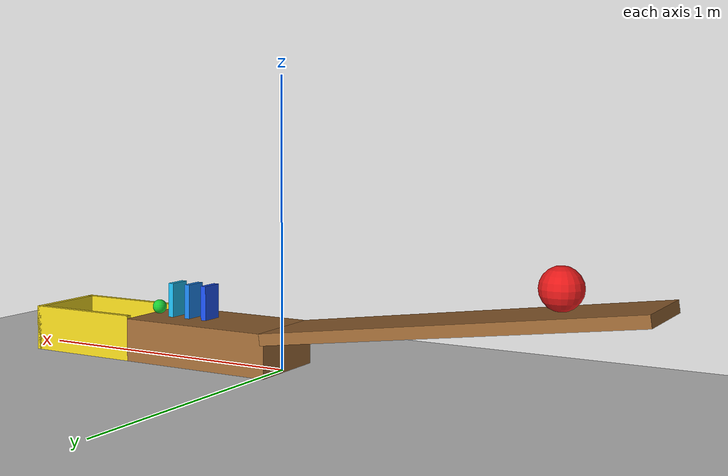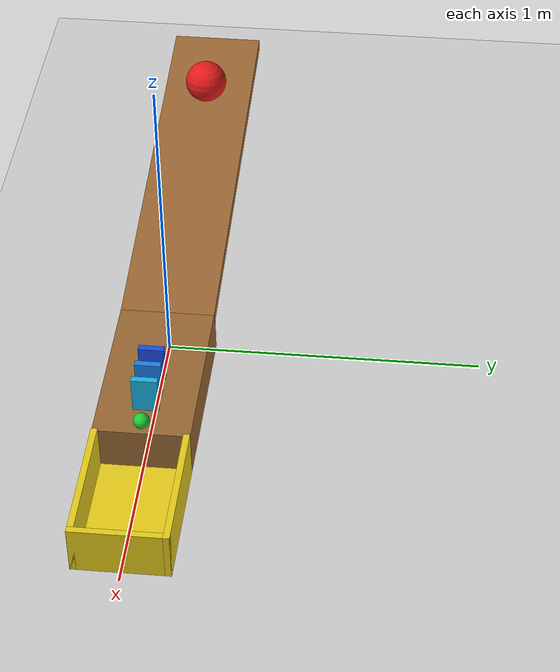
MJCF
<mujoco model="ramp_domino_cup">
  <option timestep="0.002"/>
  <worldbody>
    <light name="sun" pos="0 0 3" dir="0 0 -1" directional="true"/>
    <geom name="floor" type="plane" size="3 3 0.1" rgba="0.8 0.8 0.8 1"/>

    <body name="ramp" pos="0 0 0">
      <geom name="ramp_incline" type="box" size="0.65 0.15 0.02" pos="-0.646457 0 0.220657" euler="0 8 0" rgba="0.6 0.4 0.2 1"/>
      <geom name="ramp_platform" type="box" size="0.285 0.15 0.075" pos="0.265 0 0.075" rgba="0.6 0.4 0.2 1"/>
    </body>

    <body name="ball1" pos="-0.980526 0 0.358492">
      <freejoint name="ball1_free"/>
      <geom name="ball1_geom" type="sphere" size="0.07" mass="0.15" condim="6" friction="1 0.005 0.0005" rgba="0.9 0.1 0.1 1"/>
    </body>

    <body name="d1" pos="0.30 0 0.21">
      <freejoint name="d1_free"/>
      <geom name="d1_geom" type="box" size="0.01 0.04 0.06" rgba="0.1 0.3 0.9 1"/>
    </body>

    <body name="d2" pos="0.37 0 0.21">
      <freejoint name="d2_free"/>
      <geom name="d2_geom" type="box" size="0.01 0.04 0.06" rgba="0.1 0.5 0.9 1"/>
    </body>

    <body name="d3" pos="0.44 0 0.21">
      <freejoint name="d3_free"/>
      <geom name="d3_geom" type="box" size="0.01 0.04 0.06" rgba="0.1 0.7 0.9 1"/>
    </body>

    <body name="ball2" pos="0.52 0 0.175">
      <freejoint name="ball2_free"/>
      <geom name="ball2_geom" type="sphere" size="0.025" condim="6" friction="1 0.005 0.002" rgba="0.1 0.8 0.2 1"/>
    </body>

    <body name="cup" pos="0 0 0">
      <geom name="cup_base" type="box" size="0.2 0.13 0.005" pos="0.75 0 0.005" rgba="0.9 0.8 0.1 1"/>
      <geom name="cup_far_wall" type="box" size="0.01 0.15 0.08" pos="0.96 0 0.08" rgba="0.9 0.8 0.1 1"/>
      <geom name="cup_side_left" type="box" size="0.21 0.01 0.08" pos="0.76 0.14 0.08" rgba="0.9 0.8 0.1 1"/>
      <geom name="cup_side_right" type="box" size="0.21 0.01 0.08" pos="0.76 -0.14 0.08" rgba="0.9 0.8 0.1 1"/>
    </body>
  </worldbody>
</mujoco>
